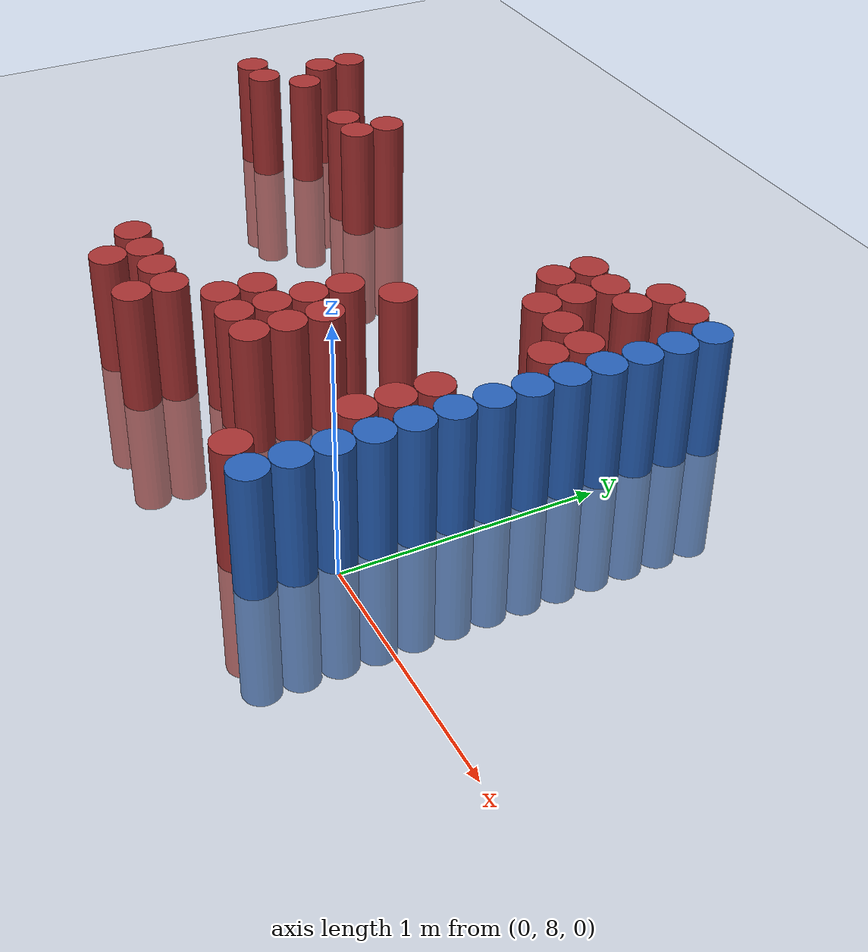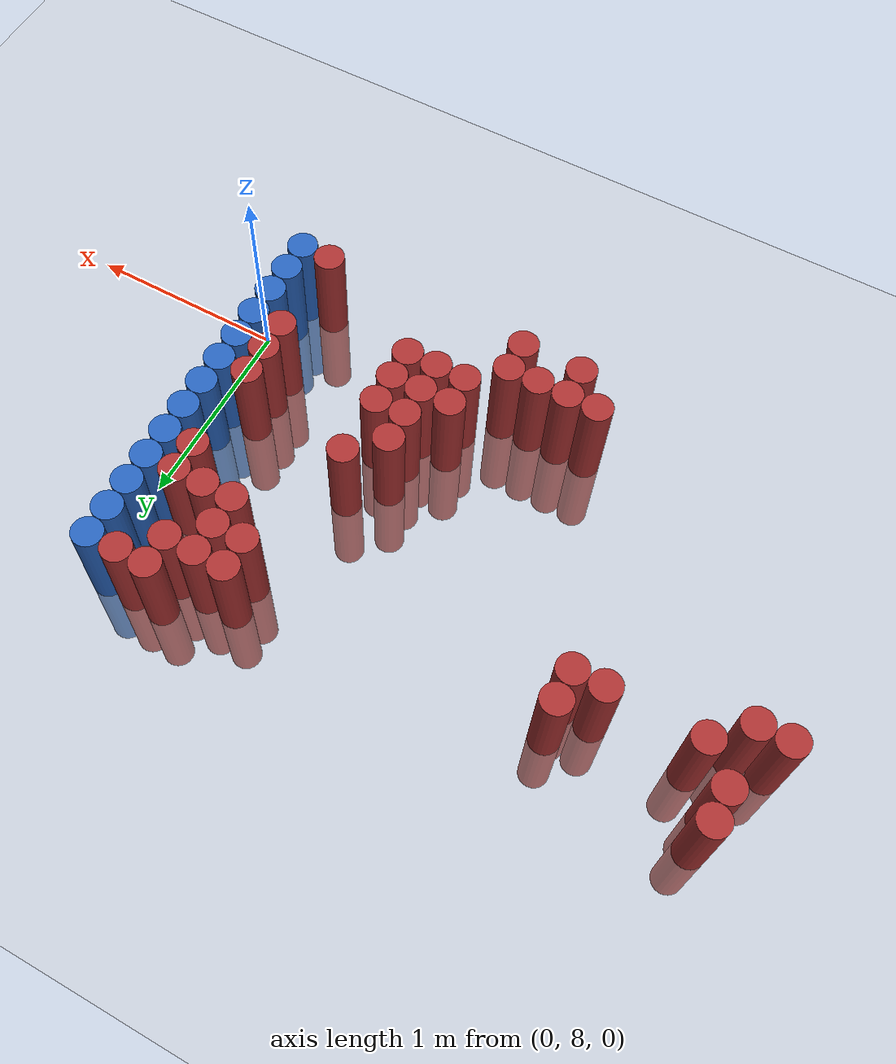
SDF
<sdf version="1.6">
 <world name="default">
  <model name="ground_plane">
   <static>1</static>
   <link name="link">
    <collision name="collision">
     <geometry><plane><normal>0 0 1</normal><size>100 100</size></plane></geometry>
     <surface><friction><ode><mu>100</mu><mu2>50</mu2></ode></friction></surface>
    </collision>
    <visual name="visual">
     <cast_shadows>0</cast_shadows>
     <geometry><plane><normal>0 0 1</normal><size>100 100</size></plane></geometry>
     <material>
      <script><uri>file://media/materials/scripts/gazebo.material</uri><name>Gazebo/Grey</name></script>
     </material>
    </visual>
   </link>
  </model>
  <model name="unit_cylinder_153">
   <static>1</static>
   <pose>-3.075000 8.925000 0.000000 0.000000 0.000000 0.000000</pose>
   <link name="link">
    <inertial>
     <mass>1</mass>
     <inertia><ixx>0.145833</ixx><ixy>0</ixy><ixz>0</ixz><iyy>0.145833</iyy><iyz>0</iyz><izz>0.125</izz></inertia>
    </inertial>
    <collision name="collision">
     <geometry><cylinder><radius>0.075000</radius><length>1</length></cylinder></geometry>
    </collision>
    <visual name="visual">
     <geometry><cylinder><radius>0.075000</radius><length>1</length></cylinder></geometry>
     <material>
      <ambient>0.648000 0.192000 0.192000 1</ambient>
      <diffuse>0.648000 0.192000 0.192000 1</diffuse>
     </material>
     <material>
      <script><name>Gazebo/Grey</name><uri>file://media/materials/scripts/gazebo.material</uri></script>
     </material>
    </visual>
   </link>
  </model>
  <model name="unit_cylinder_154">
   <static>1</static>
   <pose>-2.925000 8.925000 0.000000 0.000000 0.000000 0.000000</pose>
   <link name="link">
    <inertial>
     <mass>1</mass>
     <inertia><ixx>0.145833</ixx><ixy>0</ixy><ixz>0</ixz><iyy>0.145833</iyy><iyz>0</iyz><izz>0.125</izz></inertia>
    </inertial>
    <collision name="collision">
     <geometry><cylinder><radius>0.075000</radius><length>1</length></cylinder></geometry>
    </collision>
    <visual name="visual">
     <geometry><cylinder><radius>0.075000</radius><length>1</length></cylinder></geometry>
     <material>
      <ambient>0.648000 0.192000 0.192000 1</ambient>
      <diffuse>0.648000 0.192000 0.192000 1</diffuse>
     </material>
     <material>
      <script><name>Gazebo/Grey</name><uri>file://media/materials/scripts/gazebo.material</uri></script>
     </material>
    </visual>
   </link>
  </model>
  <model name="unit_cylinder_155">
   <static>1</static>
   <pose>-2.925000 9.225000 0.000000 0.000000 0.000000 0.000000</pose>
   <link name="link">
    <inertial>
     <mass>1</mass>
     <inertia><ixx>0.145833</ixx><ixy>0</ixy><ixz>0</ixz><iyy>0.145833</iyy><iyz>0</iyz><izz>0.125</izz></inertia>
    </inertial>
    <collision name="collision">
     <geometry><cylinder><radius>0.075000</radius><length>1</length></cylinder></geometry>
    </collision>
    <visual name="visual">
     <geometry><cylinder><radius>0.075000</radius><length>1</length></cylinder></geometry>
     <material>
      <ambient>0.648000 0.192000 0.192000 1</ambient>
      <diffuse>0.648000 0.192000 0.192000 1</diffuse>
     </material>
     <material>
      <script><name>Gazebo/Grey</name><uri>file://media/materials/scripts/gazebo.material</uri></script>
     </material>
    </visual>
   </link>
  </model>
  <model name="unit_cylinder_156">
   <static>1</static>
   <pose>-2.925000 9.375000 0.000000 0.000000 0.000000 0.000000</pose>
   <link name="link">
    <inertial>
     <mass>1</mass>
     <inertia><ixx>0.145833</ixx><ixy>0</ixy><ixz>0</ixz><iyy>0.145833</iyy><iyz>0</iyz><izz>0.125</izz></inertia>
    </inertial>
    <collision name="collision">
     <geometry><cylinder><radius>0.075000</radius><length>1</length></cylinder></geometry>
    </collision>
    <visual name="visual">
     <geometry><cylinder><radius>0.075000</radius><length>1</length></cylinder></geometry>
     <material>
      <ambient>0.648000 0.192000 0.192000 1</ambient>
      <diffuse>0.648000 0.192000 0.192000 1</diffuse>
     </material>
     <material>
      <script><name>Gazebo/Grey</name><uri>file://media/materials/scripts/gazebo.material</uri></script>
     </material>
    </visual>
   </link>
  </model>
  <model name="unit_cylinder_159">
   <static>1</static>
   <pose>-2.775000 9.075000 0.000000 0.000000 0.000000 0.000000</pose>
   <link name="link">
    <inertial>
     <mass>1</mass>
     <inertia><ixx>0.145833</ixx><ixy>0</ixy><ixz>0</ixz><iyy>0.145833</iyy><iyz>0</iyz><izz>0.125</izz></inertia>
    </inertial>
    <collision name="collision">
     <geometry><cylinder><radius>0.075000</radius><length>1</length></cylinder></geometry>
    </collision>
    <visual name="visual">
     <geometry><cylinder><radius>0.075000</radius><length>1</length></cylinder></geometry>
     <material>
      <ambient>0.648000 0.192000 0.192000 1</ambient>
      <diffuse>0.648000 0.192000 0.192000 1</diffuse>
     </material>
     <material>
      <script><name>Gazebo/Grey</name><uri>file://media/materials/scripts/gazebo.material</uri></script>
     </material>
    </visual>
   </link>
  </model>
  <model name="unit_cylinder_161">
   <static>1</static>
   <pose>-2.325000 9.075000 0.000000 0.000000 0.000000 0.000000</pose>
   <link name="link">
    <inertial>
     <mass>1</mass>
     <inertia><ixx>0.145833</ixx><ixy>0</ixy><ixz>0</ixz><iyy>0.145833</iyy><iyz>0</iyz><izz>0.125</izz></inertia>
    </inertial>
    <collision name="collision">
     <geometry><cylinder><radius>0.075000</radius><length>1</length></cylinder></geometry>
    </collision>
    <visual name="visual">
     <geometry><cylinder><radius>0.075000</radius><length>1</length></cylinder></geometry>
     <material>
      <ambient>0.648000 0.192000 0.192000 1</ambient>
      <diffuse>0.648000 0.192000 0.192000 1</diffuse>
     </material>
     <material>
      <script><name>Gazebo/Grey</name><uri>file://media/materials/scripts/gazebo.material</uri></script>
     </material>
    </visual>
   </link>
  </model>
  <model name="unit_cylinder_163">
   <static>1</static>
   <pose>-2.175000 9.075000 0.000000 0.000000 0.000000 0.000000</pose>
   <link name="link">
    <inertial>
     <mass>1</mass>
     <inertia><ixx>0.145833</ixx><ixy>0</ixy><ixz>0</ixz><iyy>0.145833</iyy><iyz>0</iyz><izz>0.125</izz></inertia>
    </inertial>
    <collision name="collision">
     <geometry><cylinder><radius>0.075000</radius><length>1</length></cylinder></geometry>
    </collision>
    <visual name="visual">
     <geometry><cylinder><radius>0.075000</radius><length>1</length></cylinder></geometry>
     <material>
      <ambient>0.648000 0.192000 0.192000 1</ambient>
      <diffuse>0.648000 0.192000 0.192000 1</diffuse>
     </material>
     <material>
      <script><name>Gazebo/Grey</name><uri>file://media/materials/scripts/gazebo.material</uri></script>
     </material>
    </visual>
   </link>
  </model>
  <model name="unit_cylinder_164">
   <static>1</static>
   <pose>-2.175000 9.225000 0.000000 0.000000 0.000000 0.000000</pose>
   <link name="link">
    <inertial>
     <mass>1</mass>
     <inertia><ixx>0.145833</ixx><ixy>0</ixy><ixz>0</ixz><iyy>0.145833</iyy><iyz>0</iyz><izz>0.125</izz></inertia>
    </inertial>
    <collision name="collision">
     <geometry><cylinder><radius>0.075000</radius><length>1</length></cylinder></geometry>
    </collision>
    <visual name="visual">
     <geometry><cylinder><radius>0.075000</radius><length>1</length></cylinder></geometry>
     <material>
      <ambient>0.648000 0.192000 0.192000 1</ambient>
      <diffuse>0.648000 0.192000 0.192000 1</diffuse>
     </material>
     <material>
      <script><name>Gazebo/Grey</name><uri>file://media/materials/scripts/gazebo.material</uri></script>
     </material>
    </visual>
   </link>
  </model>
  <model name="unit_cylinder_168">
   <static>1</static>
   <pose>-1.725000 7.875000 0.000000 0.000000 0.000000 0.000000</pose>
   <link name="link">
    <inertial>
     <mass>1</mass>
     <inertia><ixx>0.145833</ixx><ixy>0</ixy><ixz>0</ixz><iyy>0.145833</iyy><iyz>0</iyz><izz>0.125</izz></inertia>
    </inertial>
    <collision name="collision">
     <geometry><cylinder><radius>0.075000</radius><length>1</length></cylinder></geometry>
    </collision>
    <visual name="visual">
     <geometry><cylinder><radius>0.075000</radius><length>1</length></cylinder></geometry>
     <material>
      <ambient>0.648000 0.192000 0.192000 1</ambient>
      <diffuse>0.648000 0.192000 0.192000 1</diffuse>
     </material>
     <material>
      <script><name>Gazebo/Grey</name><uri>file://media/materials/scripts/gazebo.material</uri></script>
     </material>
    </visual>
   </link>
  </model>
  <model name="unit_cylinder_171">
   <static>1</static>
   <pose>-1.575000 7.725000 0.000000 0.000000 0.000000 0.000000</pose>
   <link name="link">
    <inertial>
     <mass>1</mass>
     <inertia><ixx>0.145833</ixx><ixy>0</ixy><ixz>0</ixz><iyy>0.145833</iyy><iyz>0</iyz><izz>0.125</izz></inertia>
    </inertial>
    <collision name="collision">
     <geometry><cylinder><radius>0.075000</radius><length>1</length></cylinder></geometry>
    </collision>
    <visual name="visual">
     <geometry><cylinder><radius>0.075000</radius><length>1</length></cylinder></geometry>
     <material>
      <ambient>0.648000 0.192000 0.192000 1</ambient>
      <diffuse>0.648000 0.192000 0.192000 1</diffuse>
     </material>
     <material>
      <script><name>Gazebo/Grey</name><uri>file://media/materials/scripts/gazebo.material</uri></script>
     </material>
    </visual>
   </link>
  </model>
  <model name="unit_cylinder_172">
   <static>1</static>
   <pose>-1.575000 7.875000 0.000000 0.000000 0.000000 0.000000</pose>
   <link name="link">
    <inertial>
     <mass>1</mass>
     <inertia><ixx>0.145833</ixx><ixy>0</ixy><ixz>0</ixz><iyy>0.145833</iyy><iyz>0</iyz><izz>0.125</izz></inertia>
    </inertial>
    <collision name="collision">
     <geometry><cylinder><radius>0.075000</radius><length>1</length></cylinder></geometry>
    </collision>
    <visual name="visual">
     <geometry><cylinder><radius>0.075000</radius><length>1</length></cylinder></geometry>
     <material>
      <ambient>0.648000 0.192000 0.192000 1</ambient>
      <diffuse>0.648000 0.192000 0.192000 1</diffuse>
     </material>
     <material>
      <script><name>Gazebo/Grey</name><uri>file://media/materials/scripts/gazebo.material</uri></script>
     </material>
    </visual>
   </link>
  </model>
  <model name="unit_cylinder_176">
   <static>1</static>
   <pose>-1.425000 7.875000 0.000000 0.000000 0.000000 0.000000</pose>
   <link name="link">
    <inertial>
     <mass>1</mass>
     <inertia><ixx>0.145833</ixx><ixy>0</ixy><ixz>0</ixz><iyy>0.145833</iyy><iyz>0</iyz><izz>0.125</izz></inertia>
    </inertial>
    <collision name="collision">
     <geometry><cylinder><radius>0.075000</radius><length>1</length></cylinder></geometry>
    </collision>
    <visual name="visual">
     <geometry><cylinder><radius>0.075000</radius><length>1</length></cylinder></geometry>
     <material>
      <ambient>0.648000 0.192000 0.192000 1</ambient>
      <diffuse>0.648000 0.192000 0.192000 1</diffuse>
     </material>
     <material>
      <script><name>Gazebo/Grey</name><uri>file://media/materials/scripts/gazebo.material</uri></script>
     </material>
    </visual>
   </link>
  </model>
  <model name="unit_cylinder_179">
   <static>1</static>
   <pose>-1.275000 7.725000 0.000000 0.000000 0.000000 0.000000</pose>
   <link name="link">
    <inertial>
     <mass>1</mass>
     <inertia><ixx>0.145833</ixx><ixy>0</ixy><ixz>0</ixz><iyy>0.145833</iyy><iyz>0</iyz><izz>0.125</izz></inertia>
    </inertial>
    <collision name="collision">
     <geometry><cylinder><radius>0.075000</radius><length>1</length></cylinder></geometry>
    </collision>
    <visual name="visual">
     <geometry><cylinder><radius>0.075000</radius><length>1</length></cylinder></geometry>
     <material>
      <ambient>0.648000 0.192000 0.192000 1</ambient>
      <diffuse>0.648000 0.192000 0.192000 1</diffuse>
     </material>
     <material>
      <script><name>Gazebo/Grey</name><uri>file://media/materials/scripts/gazebo.material</uri></script>
     </material>
    </visual>
   </link>
  </model>
  <model name="unit_cylinder_180">
   <static>1</static>
   <pose>-1.275000 7.875000 0.000000 0.000000 0.000000 0.000000</pose>
   <link name="link">
    <inertial>
     <mass>1</mass>
     <inertia><ixx>0.145833</ixx><ixy>0</ixy><ixz>0</ixz><iyy>0.145833</iyy><iyz>0</iyz><izz>0.125</izz></inertia>
    </inertial>
    <collision name="collision">
     <geometry><cylinder><radius>0.075000</radius><length>1</length></cylinder></geometry>
    </collision>
    <visual name="visual">
     <geometry><cylinder><radius>0.075000</radius><length>1</length></cylinder></geometry>
     <material>
      <ambient>0.648000 0.192000 0.192000 1</ambient>
      <diffuse>0.648000 0.192000 0.192000 1</diffuse>
     </material>
     <material>
      <script><name>Gazebo/Grey</name><uri>file://media/materials/scripts/gazebo.material</uri></script>
     </material>
    </visual>
   </link>
  </model>
  <model name="unit_cylinder_182">
   <static>1</static>
   <pose>-1.125000 8.025000 0.000000 0.000000 0.000000 0.000000</pose>
   <link name="link">
    <inertial>
     <mass>1</mass>
     <inertia><ixx>0.145833</ixx><ixy>0</ixy><ixz>0</ixz><iyy>0.145833</iyy><iyz>0</iyz><izz>0.125</izz></inertia>
    </inertial>
    <collision name="collision">
     <geometry><cylinder><radius>0.075000</radius><length>1</length></cylinder></geometry>
    </collision>
    <visual name="visual">
     <geometry><cylinder><radius>0.075000</radius><length>1</length></cylinder></geometry>
     <material>
      <ambient>0.648000 0.192000 0.192000 1</ambient>
      <diffuse>0.648000 0.192000 0.192000 1</diffuse>
     </material>
     <material>
      <script><name>Gazebo/Grey</name><uri>file://media/materials/scripts/gazebo.material</uri></script>
     </material>
    </visual>
   </link>
  </model>
  <model name="unit_cylinder_183">
   <static>1</static>
   <pose>-1.125000 8.175000 0.000000 0.000000 0.000000 0.000000</pose>
   <link name="link">
    <inertial>
     <mass>1</mass>
     <inertia><ixx>0.145833</ixx><ixy>0</ixy><ixz>0</ixz><iyy>0.145833</iyy><iyz>0</iyz><izz>0.125</izz></inertia>
    </inertial>
    <collision name="collision">
     <geometry><cylinder><radius>0.075000</radius><length>1</length></cylinder></geometry>
    </collision>
    <visual name="visual">
     <geometry><cylinder><radius>0.075000</radius><length>1</length></cylinder></geometry>
     <material>
      <ambient>0.648000 0.192000 0.192000 1</ambient>
      <diffuse>0.648000 0.192000 0.192000 1</diffuse>
     </material>
     <material>
      <script><name>Gazebo/Grey</name><uri>file://media/materials/scripts/gazebo.material</uri></script>
     </material>
    </visual>
   </link>
  </model>
  <model name="unit_cylinder_187">
   <static>1</static>
   <pose>-0.975000 8.025000 0.000000 0.000000 0.000000 0.000000</pose>
   <link name="link">
    <inertial>
     <mass>1</mass>
     <inertia><ixx>0.145833</ixx><ixy>0</ixy><ixz>0</ixz><iyy>0.145833</iyy><iyz>0</iyz><izz>0.125</izz></inertia>
    </inertial>
    <collision name="collision">
     <geometry><cylinder><radius>0.075000</radius><length>1</length></cylinder></geometry>
    </collision>
    <visual name="visual">
     <geometry><cylinder><radius>0.075000</radius><length>1</length></cylinder></geometry>
     <material>
      <ambient>0.648000 0.192000 0.192000 1</ambient>
      <diffuse>0.648000 0.192000 0.192000 1</diffuse>
     </material>
     <material>
      <script><name>Gazebo/Grey</name><uri>file://media/materials/scripts/gazebo.material</uri></script>
     </material>
    </visual>
   </link>
  </model>
  <model name="unit_cylinder_188">
   <static>1</static>
   <pose>-0.975000 8.175000 0.000000 0.000000 0.000000 0.000000</pose>
   <link name="link">
    <inertial>
     <mass>1</mass>
     <inertia><ixx>0.145833</ixx><ixy>0</ixy><ixz>0</ixz><iyy>0.145833</iyy><iyz>0</iyz><izz>0.125</izz></inertia>
    </inertial>
    <collision name="collision">
     <geometry><cylinder><radius>0.075000</radius><length>1</length></cylinder></geometry>
    </collision>
    <visual name="visual">
     <geometry><cylinder><radius>0.075000</radius><length>1</length></cylinder></geometry>
     <material>
      <ambient>0.648000 0.192000 0.192000 1</ambient>
      <diffuse>0.648000 0.192000 0.192000 1</diffuse>
     </material>
     <material>
      <script><name>Gazebo/Grey</name><uri>file://media/materials/scripts/gazebo.material</uri></script>
     </material>
    </visual>
   </link>
  </model>
  <model name="unit_cylinder_189">
   <static>1</static>
   <pose>-0.975000 8.325000 0.000000 0.000000 0.000000 0.000000</pose>
   <link name="link">
    <inertial>
     <mass>1</mass>
     <inertia><ixx>0.145833</ixx><ixy>0</ixy><ixz>0</ixz><iyy>0.145833</iyy><iyz>0</iyz><izz>0.125</izz></inertia>
    </inertial>
    <collision name="collision">
     <geometry><cylinder><radius>0.075000</radius><length>1</length></cylinder></geometry>
    </collision>
    <visual name="visual">
     <geometry><cylinder><radius>0.075000</radius><length>1</length></cylinder></geometry>
     <material>
      <ambient>0.648000 0.192000 0.192000 1</ambient>
      <diffuse>0.648000 0.192000 0.192000 1</diffuse>
     </material>
     <material>
      <script><name>Gazebo/Grey</name><uri>file://media/materials/scripts/gazebo.material</uri></script>
     </material>
    </visual>
   </link>
  </model>
  <model name="unit_cylinder_190">
   <static>1</static>
   <pose>-0.975000 8.475000 0.000000 0.000000 0.000000 0.000000</pose>
   <link name="link">
    <inertial>
     <mass>1</mass>
     <inertia><ixx>0.145833</ixx><ixy>0</ixy><ixz>0</ixz><iyy>0.145833</iyy><iyz>0</iyz><izz>0.125</izz></inertia>
    </inertial>
    <collision name="collision">
     <geometry><cylinder><radius>0.075000</radius><length>1</length></cylinder></geometry>
    </collision>
    <visual name="visual">
     <geometry><cylinder><radius>0.075000</radius><length>1</length></cylinder></geometry>
     <material>
      <ambient>0.648000 0.192000 0.192000 1</ambient>
      <diffuse>0.648000 0.192000 0.192000 1</diffuse>
     </material>
     <material>
      <script><name>Gazebo/Grey</name><uri>file://media/materials/scripts/gazebo.material</uri></script>
     </material>
    </visual>
   </link>
  </model>
  <model name="unit_cylinder_194">
   <static>1</static>
   <pose>-0.825000 8.025000 0.000000 0.000000 0.000000 0.000000</pose>
   <link name="link">
    <inertial>
     <mass>1</mass>
     <inertia><ixx>0.145833</ixx><ixy>0</ixy><ixz>0</ixz><iyy>0.145833</iyy><iyz>0</iyz><izz>0.125</izz></inertia>
    </inertial>
    <collision name="collision">
     <geometry><cylinder><radius>0.075000</radius><length>1</length></cylinder></geometry>
    </collision>
    <visual name="visual">
     <geometry><cylinder><radius>0.075000</radius><length>1</length></cylinder></geometry>
     <material>
      <ambient>0.648000 0.192000 0.192000 1</ambient>
      <diffuse>0.648000 0.192000 0.192000 1</diffuse>
     </material>
     <material>
      <script><name>Gazebo/Grey</name><uri>file://media/materials/scripts/gazebo.material</uri></script>
     </material>
    </visual>
   </link>
  </model>
  <model name="unit_cylinder_195">
   <static>1</static>
   <pose>-0.825000 8.175000 0.000000 0.000000 0.000000 0.000000</pose>
   <link name="link">
    <inertial>
     <mass>1</mass>
     <inertia><ixx>0.145833</ixx><ixy>0</ixy><ixz>0</ixz><iyy>0.145833</iyy><iyz>0</iyz><izz>0.125</izz></inertia>
    </inertial>
    <collision name="collision">
     <geometry><cylinder><radius>0.075000</radius><length>1</length></cylinder></geometry>
    </collision>
    <visual name="visual">
     <geometry><cylinder><radius>0.075000</radius><length>1</length></cylinder></geometry>
     <material>
      <ambient>0.648000 0.192000 0.192000 1</ambient>
      <diffuse>0.648000 0.192000 0.192000 1</diffuse>
     </material>
     <material>
      <script><name>Gazebo/Grey</name><uri>file://media/materials/scripts/gazebo.material</uri></script>
     </material>
    </visual>
   </link>
  </model>
  <model name="unit_cylinder_196">
   <static>1</static>
   <pose>-0.825000 8.325000 0.000000 0.000000 0.000000 0.000000</pose>
   <link name="link">
    <inertial>
     <mass>1</mass>
     <inertia><ixx>0.145833</ixx><ixy>0</ixy><ixz>0</ixz><iyy>0.145833</iyy><iyz>0</iyz><izz>0.125</izz></inertia>
    </inertial>
    <collision name="collision">
     <geometry><cylinder><radius>0.075000</radius><length>1</length></cylinder></geometry>
    </collision>
    <visual name="visual">
     <geometry><cylinder><radius>0.075000</radius><length>1</length></cylinder></geometry>
     <material>
      <ambient>0.648000 0.192000 0.192000 1</ambient>
      <diffuse>0.648000 0.192000 0.192000 1</diffuse>
     </material>
     <material>
      <script><name>Gazebo/Grey</name><uri>file://media/materials/scripts/gazebo.material</uri></script>
     </material>
    </visual>
   </link>
  </model>
  <model name="unit_cylinder_197">
   <static>1</static>
   <pose>-0.825000 8.625000 0.000000 0.000000 0.000000 0.000000</pose>
   <link name="link">
    <inertial>
     <mass>1</mass>
     <inertia><ixx>0.145833</ixx><ixy>0</ixy><ixz>0</ixz><iyy>0.145833</iyy><iyz>0</iyz><izz>0.125</izz></inertia>
    </inertial>
    <collision name="collision">
     <geometry><cylinder><radius>0.075000</radius><length>1</length></cylinder></geometry>
    </collision>
    <visual name="visual">
     <geometry><cylinder><radius>0.075000</radius><length>1</length></cylinder></geometry>
     <material>
      <ambient>0.648000 0.192000 0.192000 1</ambient>
      <diffuse>0.648000 0.192000 0.192000 1</diffuse>
     </material>
     <material>
      <script><name>Gazebo/Grey</name><uri>file://media/materials/scripts/gazebo.material</uri></script>
     </material>
    </visual>
   </link>
  </model>
  <model name="unit_cylinder_200">
   <static>1</static>
   <pose>-0.675000 9.225000 0.000000 0.000000 0.000000 0.000000</pose>
   <link name="link">
    <inertial>
     <mass>1</mass>
     <inertia><ixx>0.145833</ixx><ixy>0</ixy><ixz>0</ixz><iyy>0.145833</iyy><iyz>0</iyz><izz>0.125</izz></inertia>
    </inertial>
    <collision name="collision">
     <geometry><cylinder><radius>0.075000</radius><length>1</length></cylinder></geometry>
    </collision>
    <visual name="visual">
     <geometry><cylinder><radius>0.075000</radius><length>1</length></cylinder></geometry>
     <material>
      <ambient>0.648000 0.192000 0.192000 1</ambient>
      <diffuse>0.648000 0.192000 0.192000 1</diffuse>
     </material>
     <material>
      <script><name>Gazebo/Grey</name><uri>file://media/materials/scripts/gazebo.material</uri></script>
     </material>
    </visual>
   </link>
  </model>
  <model name="unit_cylinder_201">
   <static>1</static>
   <pose>-0.675000 9.375000 0.000000 0.000000 0.000000 0.000000</pose>
   <link name="link">
    <inertial>
     <mass>1</mass>
     <inertia><ixx>0.145833</ixx><ixy>0</ixy><ixz>0</ixz><iyy>0.145833</iyy><iyz>0</iyz><izz>0.125</izz></inertia>
    </inertial>
    <collision name="collision">
     <geometry><cylinder><radius>0.075000</radius><length>1</length></cylinder></geometry>
    </collision>
    <visual name="visual">
     <geometry><cylinder><radius>0.075000</radius><length>1</length></cylinder></geometry>
     <material>
      <ambient>0.648000 0.192000 0.192000 1</ambient>
      <diffuse>0.648000 0.192000 0.192000 1</diffuse>
     </material>
     <material>
      <script><name>Gazebo/Grey</name><uri>file://media/materials/scripts/gazebo.material</uri></script>
     </material>
    </visual>
   </link>
  </model>
  <model name="unit_cylinder_204">
   <static>1</static>
   <pose>-0.525000 9.075000 0.000000 0.000000 0.000000 0.000000</pose>
   <link name="link">
    <inertial>
     <mass>1</mass>
     <inertia><ixx>0.145833</ixx><ixy>0</ixy><ixz>0</ixz><iyy>0.145833</iyy><iyz>0</iyz><izz>0.125</izz></inertia>
    </inertial>
    <collision name="collision">
     <geometry><cylinder><radius>0.075000</radius><length>1</length></cylinder></geometry>
    </collision>
    <visual name="visual">
     <geometry><cylinder><radius>0.075000</radius><length>1</length></cylinder></geometry>
     <material>
      <ambient>0.648000 0.192000 0.192000 1</ambient>
      <diffuse>0.648000 0.192000 0.192000 1</diffuse>
     </material>
     <material>
      <script><name>Gazebo/Grey</name><uri>file://media/materials/scripts/gazebo.material</uri></script>
     </material>
    </visual>
   </link>
  </model>
  <model name="unit_cylinder_205">
   <static>1</static>
   <pose>-0.525000 9.225000 0.000000 0.000000 0.000000 0.000000</pose>
   <link name="link">
    <inertial>
     <mass>1</mass>
     <inertia><ixx>0.145833</ixx><ixy>0</ixy><ixz>0</ixz><iyy>0.145833</iyy><iyz>0</iyz><izz>0.125</izz></inertia>
    </inertial>
    <collision name="collision">
     <geometry><cylinder><radius>0.075000</radius><length>1</length></cylinder></geometry>
    </collision>
    <visual name="visual">
     <geometry><cylinder><radius>0.075000</radius><length>1</length></cylinder></geometry>
     <material>
      <ambient>0.648000 0.192000 0.192000 1</ambient>
      <diffuse>0.648000 0.192000 0.192000 1</diffuse>
     </material>
     <material>
      <script><name>Gazebo/Grey</name><uri>file://media/materials/scripts/gazebo.material</uri></script>
     </material>
    </visual>
   </link>
  </model>
  <model name="unit_cylinder_206">
   <static>1</static>
   <pose>-0.525000 9.375000 0.000000 0.000000 0.000000 0.000000</pose>
   <link name="link">
    <inertial>
     <mass>1</mass>
     <inertia><ixx>0.145833</ixx><ixy>0</ixy><ixz>0</ixz><iyy>0.145833</iyy><iyz>0</iyz><izz>0.125</izz></inertia>
    </inertial>
    <collision name="collision">
     <geometry><cylinder><radius>0.075000</radius><length>1</length></cylinder></geometry>
    </collision>
    <visual name="visual">
     <geometry><cylinder><radius>0.075000</radius><length>1</length></cylinder></geometry>
     <material>
      <ambient>0.648000 0.192000 0.192000 1</ambient>
      <diffuse>0.648000 0.192000 0.192000 1</diffuse>
     </material>
     <material>
      <script><name>Gazebo/Grey</name><uri>file://media/materials/scripts/gazebo.material</uri></script>
     </material>
    </visual>
   </link>
  </model>
  <model name="unit_cylinder_210">
   <static>1</static>
   <pose>-0.375000 9.075000 0.000000 0.000000 0.000000 0.000000</pose>
   <link name="link">
    <inertial>
     <mass>1</mass>
     <inertia><ixx>0.145833</ixx><ixy>0</ixy><ixz>0</ixz><iyy>0.145833</iyy><iyz>0</iyz><izz>0.125</izz></inertia>
    </inertial>
    <collision name="collision">
     <geometry><cylinder><radius>0.075000</radius><length>1</length></cylinder></geometry>
    </collision>
    <visual name="visual">
     <geometry><cylinder><radius>0.075000</radius><length>1</length></cylinder></geometry>
     <material>
      <ambient>0.648000 0.192000 0.192000 1</ambient>
      <diffuse>0.648000 0.192000 0.192000 1</diffuse>
     </material>
     <material>
      <script><name>Gazebo/Grey</name><uri>file://media/materials/scripts/gazebo.material</uri></script>
     </material>
    </visual>
   </link>
  </model>
  <model name="unit_cylinder_211">
   <static>1</static>
   <pose>-0.375000 9.375000 0.000000 0.000000 0.000000 0.000000</pose>
   <link name="link">
    <inertial>
     <mass>1</mass>
     <inertia><ixx>0.145833</ixx><ixy>0</ixy><ixz>0</ixz><iyy>0.145833</iyy><iyz>0</iyz><izz>0.125</izz></inertia>
    </inertial>
    <collision name="collision">
     <geometry><cylinder><radius>0.075000</radius><length>1</length></cylinder></geometry>
    </collision>
    <visual name="visual">
     <geometry><cylinder><radius>0.075000</radius><length>1</length></cylinder></geometry>
     <material>
      <ambient>0.648000 0.192000 0.192000 1</ambient>
      <diffuse>0.648000 0.192000 0.192000 1</diffuse>
     </material>
     <material>
      <script><name>Gazebo/Grey</name><uri>file://media/materials/scripts/gazebo.material</uri></script>
     </material>
    </visual>
   </link>
  </model>
  <model name="unit_cylinder_212">
   <static>1</static>
   <pose>-0.375000 9.525000 0.000000 0.000000 0.000000 0.000000</pose>
   <link name="link">
    <inertial>
     <mass>1</mass>
     <inertia><ixx>0.145833</ixx><ixy>0</ixy><ixz>0</ixz><iyy>0.145833</iyy><iyz>0</iyz><izz>0.125</izz></inertia>
    </inertial>
    <collision name="collision">
     <geometry><cylinder><radius>0.075000</radius><length>1</length></cylinder></geometry>
    </collision>
    <visual name="visual">
     <geometry><cylinder><radius>0.075000</radius><length>1</length></cylinder></geometry>
     <material>
      <ambient>0.648000 0.192000 0.192000 1</ambient>
      <diffuse>0.648000 0.192000 0.192000 1</diffuse>
     </material>
     <material>
      <script><name>Gazebo/Grey</name><uri>file://media/materials/scripts/gazebo.material</uri></script>
     </material>
    </visual>
   </link>
  </model>
  <model name="unit_cylinder_223">
   <static>1</static>
   <pose>-0.225000 7.725000 0.000000 0.000000 0.000000 0.000000</pose>
   <link name="link">
    <inertial>
     <mass>1</mass>
     <inertia><ixx>0.145833</ixx><ixy>0</ixy><ixz>0</ixz><iyy>0.145833</iyy><iyz>0</iyz><izz>0.125</izz></inertia>
    </inertial>
    <collision name="collision">
     <geometry><cylinder><radius>0.075000</radius><length>1</length></cylinder></geometry>
    </collision>
    <visual name="visual">
     <geometry><cylinder><radius>0.075000</radius><length>1</length></cylinder></geometry>
     <material>
      <ambient>0.648000 0.192000 0.192000 1</ambient>
      <diffuse>0.648000 0.192000 0.192000 1</diffuse>
     </material>
     <material>
      <script><name>Gazebo/Grey</name><uri>file://media/materials/scripts/gazebo.material</uri></script>
     </material>
    </visual>
   </link>
  </model>
  <model name="unit_cylinder_224">
   <static>1</static>
   <pose>-0.225000 8.175000 0.000000 0.000000 0.000000 0.000000</pose>
   <link name="link">
    <inertial>
     <mass>1</mass>
     <inertia><ixx>0.145833</ixx><ixy>0</ixy><ixz>0</ixz><iyy>0.145833</iyy><iyz>0</iyz><izz>0.125</izz></inertia>
    </inertial>
    <collision name="collision">
     <geometry><cylinder><radius>0.075000</radius><length>1</length></cylinder></geometry>
    </collision>
    <visual name="visual">
     <geometry><cylinder><radius>0.075000</radius><length>1</length></cylinder></geometry>
     <material>
      <ambient>0.648000 0.192000 0.192000 1</ambient>
      <diffuse>0.648000 0.192000 0.192000 1</diffuse>
     </material>
     <material>
      <script><name>Gazebo/Grey</name><uri>file://media/materials/scripts/gazebo.material</uri></script>
     </material>
    </visual>
   </link>
  </model>
  <model name="unit_cylinder_225">
   <static>1</static>
   <pose>-0.225000 8.325000 0.000000 0.000000 0.000000 0.000000</pose>
   <link name="link">
    <inertial>
     <mass>1</mass>
     <inertia><ixx>0.145833</ixx><ixy>0</ixy><ixz>0</ixz><iyy>0.145833</iyy><iyz>0</iyz><izz>0.125</izz></inertia>
    </inertial>
    <collision name="collision">
     <geometry><cylinder><radius>0.075000</radius><length>1</length></cylinder></geometry>
    </collision>
    <visual name="visual">
     <geometry><cylinder><radius>0.075000</radius><length>1</length></cylinder></geometry>
     <material>
      <ambient>0.648000 0.192000 0.192000 1</ambient>
      <diffuse>0.648000 0.192000 0.192000 1</diffuse>
     </material>
     <material>
      <script><name>Gazebo/Grey</name><uri>file://media/materials/scripts/gazebo.material</uri></script>
     </material>
    </visual>
   </link>
  </model>
  <model name="unit_cylinder_226">
   <static>1</static>
   <pose>-0.225000 8.475000 0.000000 0.000000 0.000000 0.000000</pose>
   <link name="link">
    <inertial>
     <mass>1</mass>
     <inertia><ixx>0.145833</ixx><ixy>0</ixy><ixz>0</ixz><iyy>0.145833</iyy><iyz>0</iyz><izz>0.125</izz></inertia>
    </inertial>
    <collision name="collision">
     <geometry><cylinder><radius>0.075000</radius><length>1</length></cylinder></geometry>
    </collision>
    <visual name="visual">
     <geometry><cylinder><radius>0.075000</radius><length>1</length></cylinder></geometry>
     <material>
      <ambient>0.648000 0.192000 0.192000 1</ambient>
      <diffuse>0.648000 0.192000 0.192000 1</diffuse>
     </material>
     <material>
      <script><name>Gazebo/Grey</name><uri>file://media/materials/scripts/gazebo.material</uri></script>
     </material>
    </visual>
   </link>
  </model>
  <model name="unit_cylinder_227">
   <static>1</static>
   <pose>-0.225000 8.925000 0.000000 0.000000 0.000000 0.000000</pose>
   <link name="link">
    <inertial>
     <mass>1</mass>
     <inertia><ixx>0.145833</ixx><ixy>0</ixy><ixz>0</ixz><iyy>0.145833</iyy><iyz>0</iyz><izz>0.125</izz></inertia>
    </inertial>
    <collision name="collision">
     <geometry><cylinder><radius>0.075000</radius><length>1</length></cylinder></geometry>
    </collision>
    <visual name="visual">
     <geometry><cylinder><radius>0.075000</radius><length>1</length></cylinder></geometry>
     <material>
      <ambient>0.648000 0.192000 0.192000 1</ambient>
      <diffuse>0.648000 0.192000 0.192000 1</diffuse>
     </material>
     <material>
      <script><name>Gazebo/Grey</name><uri>file://media/materials/scripts/gazebo.material</uri></script>
     </material>
    </visual>
   </link>
  </model>
  <model name="unit_cylinder_228">
   <static>1</static>
   <pose>-0.225000 9.075000 0.000000 0.000000 0.000000 0.000000</pose>
   <link name="link">
    <inertial>
     <mass>1</mass>
     <inertia><ixx>0.145833</ixx><ixy>0</ixy><ixz>0</ixz><iyy>0.145833</iyy><iyz>0</iyz><izz>0.125</izz></inertia>
    </inertial>
    <collision name="collision">
     <geometry><cylinder><radius>0.075000</radius><length>1</length></cylinder></geometry>
    </collision>
    <visual name="visual">
     <geometry><cylinder><radius>0.075000</radius><length>1</length></cylinder></geometry>
     <material>
      <ambient>0.648000 0.192000 0.192000 1</ambient>
      <diffuse>0.648000 0.192000 0.192000 1</diffuse>
     </material>
     <material>
      <script><name>Gazebo/Grey</name><uri>file://media/materials/scripts/gazebo.material</uri></script>
     </material>
    </visual>
   </link>
  </model>
  <model name="unit_cylinder_229">
   <static>1</static>
   <pose>-0.225000 9.525000 0.000000 0.000000 0.000000 0.000000</pose>
   <link name="link">
    <inertial>
     <mass>1</mass>
     <inertia><ixx>0.145833</ixx><ixy>0</ixy><ixz>0</ixz><iyy>0.145833</iyy><iyz>0</iyz><izz>0.125</izz></inertia>
    </inertial>
    <collision name="collision">
     <geometry><cylinder><radius>0.075000</radius><length>1</length></cylinder></geometry>
    </collision>
    <visual name="visual">
     <geometry><cylinder><radius>0.075000</radius><length>1</length></cylinder></geometry>
     <material>
      <ambient>0.648000 0.192000 0.192000 1</ambient>
      <diffuse>0.648000 0.192000 0.192000 1</diffuse>
     </material>
     <material>
      <script><name>Gazebo/Grey</name><uri>file://media/materials/scripts/gazebo.material</uri></script>
     </material>
    </visual>
   </link>
  </model>
  <model name="unit_cylinder_247">
   <static>1</static>
   <pose>-0.075000 7.725000 0.000000 0.000000 0.000000 0.000000</pose>
   <link name="link">
    <inertial>
     <mass>1</mass>
     <inertia><ixx>0.145833</ixx><ixy>0</ixy><ixz>0</ixz><iyy>0.145833</iyy><iyz>0</iyz><izz>0.125</izz></inertia>
    </inertial>
    <collision name="collision">
     <geometry><cylinder><radius>0.075000</radius><length>1</length></cylinder></geometry>
    </collision>
    <visual name="visual">
     <geometry><cylinder><radius>0.075000</radius><length>1</length></cylinder></geometry>
     <material>
      <ambient>0.152000 0.379000 0.720000 1</ambient>
      <diffuse>0.152000 0.379000 0.720000 1</diffuse>
     </material>
     <material>
      <script><name>Gazebo/Grey</name><uri>file://media/materials/scripts/gazebo.material</uri></script>
     </material>
    </visual>
   </link>
  </model>
  <model name="unit_cylinder_248">
   <static>1</static>
   <pose>-0.075000 7.875000 0.000000 0.000000 0.000000 0.000000</pose>
   <link name="link">
    <inertial>
     <mass>1</mass>
     <inertia><ixx>0.145833</ixx><ixy>0</ixy><ixz>0</ixz><iyy>0.145833</iyy><iyz>0</iyz><izz>0.125</izz></inertia>
    </inertial>
    <collision name="collision">
     <geometry><cylinder><radius>0.075000</radius><length>1</length></cylinder></geometry>
    </collision>
    <visual name="visual">
     <geometry><cylinder><radius>0.075000</radius><length>1</length></cylinder></geometry>
     <material>
      <ambient>0.152000 0.379000 0.720000 1</ambient>
      <diffuse>0.152000 0.379000 0.720000 1</diffuse>
     </material>
     <material>
      <script><name>Gazebo/Grey</name><uri>file://media/materials/scripts/gazebo.material</uri></script>
     </material>
    </visual>
   </link>
  </model>
  <model name="unit_cylinder_249">
   <static>1</static>
   <pose>-0.075000 8.025000 0.000000 0.000000 0.000000 0.000000</pose>
   <link name="link">
    <inertial>
     <mass>1</mass>
     <inertia><ixx>0.145833</ixx><ixy>0</ixy><ixz>0</ixz><iyy>0.145833</iyy><iyz>0</iyz><izz>0.125</izz></inertia>
    </inertial>
    <collision name="collision">
     <geometry><cylinder><radius>0.075000</radius><length>1</length></cylinder></geometry>
    </collision>
    <visual name="visual">
     <geometry><cylinder><radius>0.075000</radius><length>1</length></cylinder></geometry>
     <material>
      <ambient>0.152000 0.379000 0.720000 1</ambient>
      <diffuse>0.152000 0.379000 0.720000 1</diffuse>
     </material>
     <material>
      <script><name>Gazebo/Grey</name><uri>file://media/materials/scripts/gazebo.material</uri></script>
     </material>
    </visual>
   </link>
  </model>
  <model name="unit_cylinder_250">
   <static>1</static>
   <pose>-0.075000 8.175000 0.000000 0.000000 0.000000 0.000000</pose>
   <link name="link">
    <inertial>
     <mass>1</mass>
     <inertia><ixx>0.145833</ixx><ixy>0</ixy><ixz>0</ixz><iyy>0.145833</iyy><iyz>0</iyz><izz>0.125</izz></inertia>
    </inertial>
    <collision name="collision">
     <geometry><cylinder><radius>0.075000</radius><length>1</length></cylinder></geometry>
    </collision>
    <visual name="visual">
     <geometry><cylinder><radius>0.075000</radius><length>1</length></cylinder></geometry>
     <material>
      <ambient>0.152000 0.379000 0.720000 1</ambient>
      <diffuse>0.152000 0.379000 0.720000 1</diffuse>
     </material>
     <material>
      <script><name>Gazebo/Grey</name><uri>file://media/materials/scripts/gazebo.material</uri></script>
     </material>
    </visual>
   </link>
  </model>
  <model name="unit_cylinder_251">
   <static>1</static>
   <pose>-0.075000 8.325000 0.000000 0.000000 0.000000 0.000000</pose>
   <link name="link">
    <inertial>
     <mass>1</mass>
     <inertia><ixx>0.145833</ixx><ixy>0</ixy><ixz>0</ixz><iyy>0.145833</iyy><iyz>0</iyz><izz>0.125</izz></inertia>
    </inertial>
    <collision name="collision">
     <geometry><cylinder><radius>0.075000</radius><length>1</length></cylinder></geometry>
    </collision>
    <visual name="visual">
     <geometry><cylinder><radius>0.075000</radius><length>1</length></cylinder></geometry>
     <material>
      <ambient>0.152000 0.379000 0.720000 1</ambient>
      <diffuse>0.152000 0.379000 0.720000 1</diffuse>
     </material>
     <material>
      <script><name>Gazebo/Grey</name><uri>file://media/materials/scripts/gazebo.material</uri></script>
     </material>
    </visual>
   </link>
  </model>
  <model name="unit_cylinder_252">
   <static>1</static>
   <pose>-0.075000 8.475000 0.000000 0.000000 0.000000 0.000000</pose>
   <link name="link">
    <inertial>
     <mass>1</mass>
     <inertia><ixx>0.145833</ixx><ixy>0</ixy><ixz>0</ixz><iyy>0.145833</iyy><iyz>0</iyz><izz>0.125</izz></inertia>
    </inertial>
    <collision name="collision">
     <geometry><cylinder><radius>0.075000</radius><length>1</length></cylinder></geometry>
    </collision>
    <visual name="visual">
     <geometry><cylinder><radius>0.075000</radius><length>1</length></cylinder></geometry>
     <material>
      <ambient>0.152000 0.379000 0.720000 1</ambient>
      <diffuse>0.152000 0.379000 0.720000 1</diffuse>
     </material>
     <material>
      <script><name>Gazebo/Grey</name><uri>file://media/materials/scripts/gazebo.material</uri></script>
     </material>
    </visual>
   </link>
  </model>
  <model name="unit_cylinder_253">
   <static>1</static>
   <pose>-0.075000 8.625000 0.000000 0.000000 0.000000 0.000000</pose>
   <link name="link">
    <inertial>
     <mass>1</mass>
     <inertia><ixx>0.145833</ixx><ixy>0</ixy><ixz>0</ixz><iyy>0.145833</iyy><iyz>0</iyz><izz>0.125</izz></inertia>
    </inertial>
    <collision name="collision">
     <geometry><cylinder><radius>0.075000</radius><length>1</length></cylinder></geometry>
    </collision>
    <visual name="visual">
     <geometry><cylinder><radius>0.075000</radius><length>1</length></cylinder></geometry>
     <material>
      <ambient>0.152000 0.379000 0.720000 1</ambient>
      <diffuse>0.152000 0.379000 0.720000 1</diffuse>
     </material>
     <material>
      <script><name>Gazebo/Grey</name><uri>file://media/materials/scripts/gazebo.material</uri></script>
     </material>
    </visual>
   </link>
  </model>
  <model name="unit_cylinder_254">
   <static>1</static>
   <pose>-0.075000 8.775000 0.000000 0.000000 0.000000 0.000000</pose>
   <link name="link">
    <inertial>
     <mass>1</mass>
     <inertia><ixx>0.145833</ixx><ixy>0</ixy><ixz>0</ixz><iyy>0.145833</iyy><iyz>0</iyz><izz>0.125</izz></inertia>
    </inertial>
    <collision name="collision">
     <geometry><cylinder><radius>0.075000</radius><length>1</length></cylinder></geometry>
    </collision>
    <visual name="visual">
     <geometry><cylinder><radius>0.075000</radius><length>1</length></cylinder></geometry>
     <material>
      <ambient>0.152000 0.379000 0.720000 1</ambient>
      <diffuse>0.152000 0.379000 0.720000 1</diffuse>
     </material>
     <material>
      <script><name>Gazebo/Grey</name><uri>file://media/materials/scripts/gazebo.material</uri></script>
     </material>
    </visual>
   </link>
  </model>
  <model name="unit_cylinder_255">
   <static>1</static>
   <pose>-0.075000 8.925000 0.000000 0.000000 0.000000 0.000000</pose>
   <link name="link">
    <inertial>
     <mass>1</mass>
     <inertia><ixx>0.145833</ixx><ixy>0</ixy><ixz>0</ixz><iyy>0.145833</iyy><iyz>0</iyz><izz>0.125</izz></inertia>
    </inertial>
    <collision name="collision">
     <geometry><cylinder><radius>0.075000</radius><length>1</length></cylinder></geometry>
    </collision>
    <visual name="visual">
     <geometry><cylinder><radius>0.075000</radius><length>1</length></cylinder></geometry>
     <material>
      <ambient>0.152000 0.379000 0.720000 1</ambient>
      <diffuse>0.152000 0.379000 0.720000 1</diffuse>
     </material>
     <material>
      <script><name>Gazebo/Grey</name><uri>file://media/materials/scripts/gazebo.material</uri></script>
     </material>
    </visual>
   </link>
  </model>
  <model name="unit_cylinder_256">
   <static>1</static>
   <pose>-0.075000 9.075000 0.000000 0.000000 0.000000 0.000000</pose>
   <link name="link">
    <inertial>
     <mass>1</mass>
     <inertia><ixx>0.145833</ixx><ixy>0</ixy><ixz>0</ixz><iyy>0.145833</iyy><iyz>0</iyz><izz>0.125</izz></inertia>
    </inertial>
    <collision name="collision">
     <geometry><cylinder><radius>0.075000</radius><length>1</length></cylinder></geometry>
    </collision>
    <visual name="visual">
     <geometry><cylinder><radius>0.075000</radius><length>1</length></cylinder></geometry>
     <material>
      <ambient>0.152000 0.379000 0.720000 1</ambient>
      <diffuse>0.152000 0.379000 0.720000 1</diffuse>
     </material>
     <material>
      <script><name>Gazebo/Grey</name><uri>file://media/materials/scripts/gazebo.material</uri></script>
     </material>
    </visual>
   </link>
  </model>
  <model name="unit_cylinder_257">
   <static>1</static>
   <pose>-0.075000 9.225000 0.000000 0.000000 0.000000 0.000000</pose>
   <link name="link">
    <inertial>
     <mass>1</mass>
     <inertia><ixx>0.145833</ixx><ixy>0</ixy><ixz>0</ixz><iyy>0.145833</iyy><iyz>0</iyz><izz>0.125</izz></inertia>
    </inertial>
    <collision name="collision">
     <geometry><cylinder><radius>0.075000</radius><length>1</length></cylinder></geometry>
    </collision>
    <visual name="visual">
     <geometry><cylinder><radius>0.075000</radius><length>1</length></cylinder></geometry>
     <material>
      <ambient>0.152000 0.379000 0.720000 1</ambient>
      <diffuse>0.152000 0.379000 0.720000 1</diffuse>
     </material>
     <material>
      <script><name>Gazebo/Grey</name><uri>file://media/materials/scripts/gazebo.material</uri></script>
     </material>
    </visual>
   </link>
  </model>
  <model name="unit_cylinder_258">
   <static>1</static>
   <pose>-0.075000 9.375000 0.000000 0.000000 0.000000 0.000000</pose>
   <link name="link">
    <inertial>
     <mass>1</mass>
     <inertia><ixx>0.145833</ixx><ixy>0</ixy><ixz>0</ixz><iyy>0.145833</iyy><iyz>0</iyz><izz>0.125</izz></inertia>
    </inertial>
    <collision name="collision">
     <geometry><cylinder><radius>0.075000</radius><length>1</length></cylinder></geometry>
    </collision>
    <visual name="visual">
     <geometry><cylinder><radius>0.075000</radius><length>1</length></cylinder></geometry>
     <material>
      <ambient>0.152000 0.379000 0.720000 1</ambient>
      <diffuse>0.152000 0.379000 0.720000 1</diffuse>
     </material>
     <material>
      <script><name>Gazebo/Grey</name><uri>file://media/materials/scripts/gazebo.material</uri></script>
     </material>
    </visual>
   </link>
  </model>
  <model name="unit_cylinder_259">
   <static>1</static>
   <pose>-0.075000 9.525000 0.000000 0.000000 0.000000 0.000000</pose>
   <link name="link">
    <inertial>
     <mass>1</mass>
     <inertia><ixx>0.145833</ixx><ixy>0</ixy><ixz>0</ixz><iyy>0.145833</iyy><iyz>0</iyz><izz>0.125</izz></inertia>
    </inertial>
    <collision name="collision">
     <geometry><cylinder><radius>0.075000</radius><length>1</length></cylinder></geometry>
    </collision>
    <visual name="visual">
     <geometry><cylinder><radius>0.075000</radius><length>1</length></cylinder></geometry>
     <material>
      <ambient>0.152000 0.379000 0.720000 1</ambient>
      <diffuse>0.152000 0.379000 0.720000 1</diffuse>
     </material>
     <material>
      <script><name>Gazebo/Grey</name><uri>file://media/materials/scripts/gazebo.material</uri></script>
     </material>
    </visual>
   </link>
  </model>
 </world>
</sdf>
